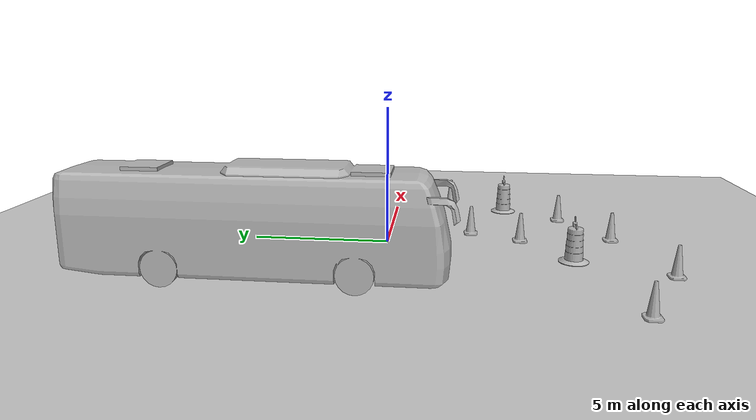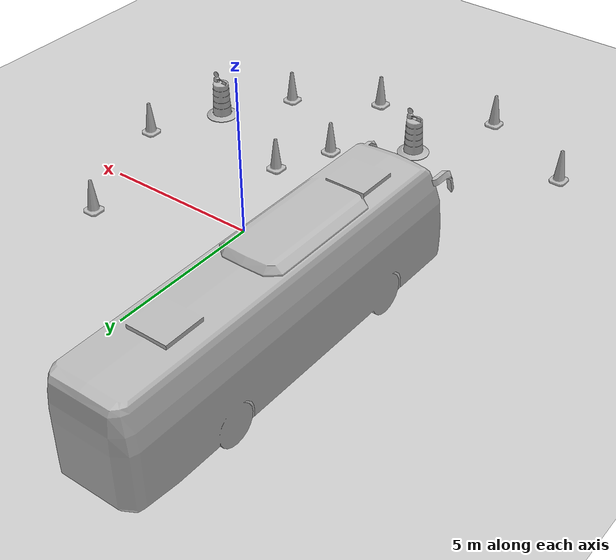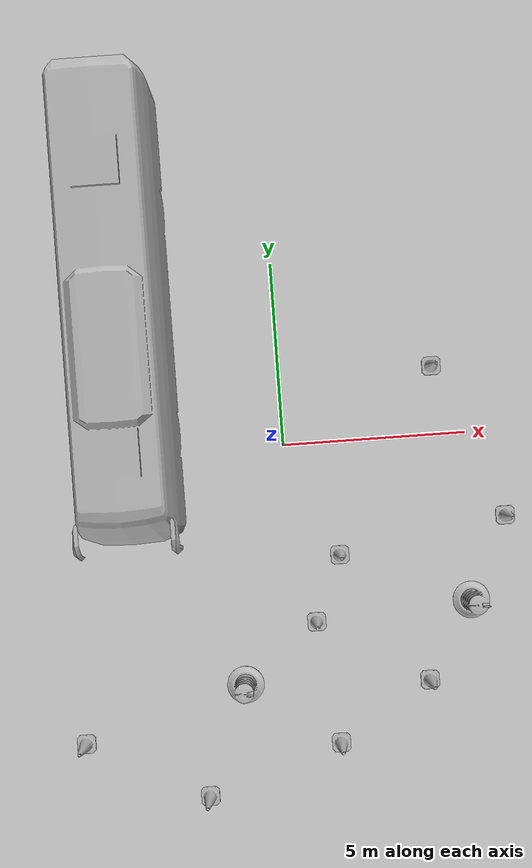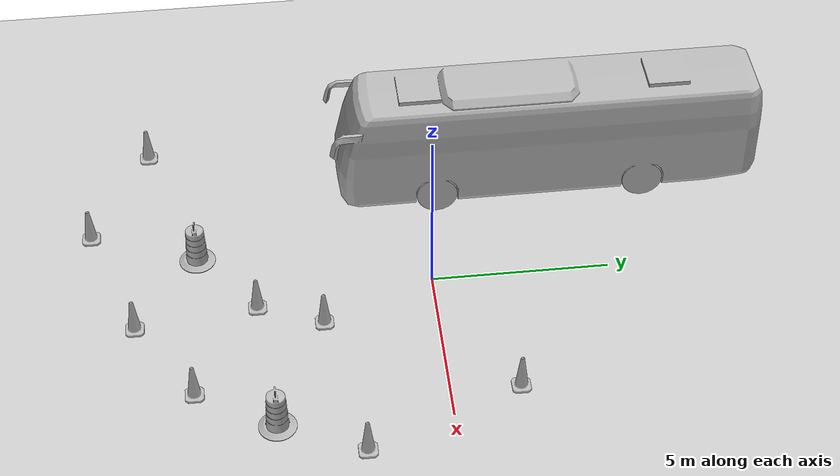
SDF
<sdf version="1.7">
 <world name="default">
  <light name="sun" type="directional">
   <pose>0 0 10 0 -0 0</pose>
   <diffuse>0.8 0.8 0.8 1</diffuse>
   <specular>0.2 0.2 0.2 1</specular>
   <attenuation>
    <range>1000</range>
    <constant>0.9</constant>
    <linear>0.01</linear>
    <quadratic>0.001</quadratic>
   </attenuation>
   <direction>-0.5 0.1 -0.9</direction>
   <spot><inner_angle>0</inner_angle><outer_angle>0</outer_angle><falloff>0</falloff></spot>
  </light>
  <model name="ground_plane">
   <static>1</static>
   <link name="link">
    <collision name="collision">
     <geometry><plane><normal>0 0 1</normal><size>100 100</size></plane></geometry>
     <surface>
      <contact><collide_bitmask>65535</collide_bitmask></contact>
      <friction><ode><mu>100</mu><mu2>50</mu2></ode></friction>
     </surface>
    </collision>
    <visual name="visual">
     <cast_shadows>0</cast_shadows>
     <geometry><plane><normal>0 0 1</normal><size>100 100</size></plane></geometry>
     <material>
      <script><uri>file://media/materials/scripts/gazebo.material</uri><name>Gazebo/Grey</name></script>
     </material>
    </visual>
   </link>
  </model>
  <gravity>0 0 -9.8</gravity>
  <magnetic_field>6e-06 2.3e-05 -4.2e-05</magnetic_field>
  <atmosphere type="adiabatic"/>
  <physics type="ode">
   <max_step_size>0.001</max_step_size>
   <real_time_factor>1</real_time_factor>
   <real_time_update_rate>1000</real_time_update_rate>
  </physics>
  <scene><ambient>0.4 0.4 0.4 1</ambient><background>0.7 0.7 0.7 1</background><shadows>1</shadows></scene>
  <audio><device>default</device></audio>
  <spherical_coordinates>
   <surface_model>EARTH_WGS84</surface_model>
   <latitude_deg>0</latitude_deg>
   <longitude_deg>0</longitude_deg>
   <elevation>0</elevation>
   <heading_deg>0</heading_deg>
  </spherical_coordinates>
  <model name="bus">
   <static>1</static>
   <link name="link">
    <collision name="collision">
     <geometry><mesh><scale>0.01 0.01 0.01</scale><uri>model://bus/meshes/bus.obj</uri></mesh></geometry>
    </collision>
    <visual name="visual">
     <geometry><mesh><scale>0.01 0.01 0.01</scale><uri>model://bus/meshes/bus.obj</uri></mesh></geometry>
    </visual>
   </link>
   <pose>-4.06905 3.73761 0 0 -0 0</pose>
  </model>
  <model name="Construction Cone">
   <link name="link">
    <collision name="collision">
     <geometry>
      <mesh><scale>10 10 10</scale><uri>model://construction_cone/meshes/construction_cone.dae</uri></mesh>
     </geometry>
    </collision>
    <visual name="visual">
     <geometry>
      <mesh><scale>10 10 10</scale><uri>model://construction_cone/meshes/construction_cone.dae</uri></mesh>
     </geometry>
    </visual>
    <inertial>
     <inertia><ixx>1</ixx><ixy>0</ixy><ixz>0</ixz><iyy>1</iyy><iyz>0</iyz><izz>1</izz></inertia>
     <mass>1</mass>
    </inertial>
   </link>
   <pose>4.20942 1.88494 -0 0 -1e-06 0</pose>
  </model>
  <model name="Construction Cone_0">
   <link name="link">
    <collision name="collision">
     <geometry>
      <mesh><scale>10 10 10</scale><uri>model://construction_cone/meshes/construction_cone.dae</uri></mesh>
     </geometry>
    </collision>
    <visual name="visual">
     <geometry>
      <mesh><scale>10 10 10</scale><uri>model://construction_cone/meshes/construction_cone.dae</uri></mesh>
     </geometry>
    </visual>
    <inertial>
     <inertia><ixx>1</ixx><ixy>0</ixy><ixz>0</ixz><iyy>1</iyy><iyz>0</iyz><izz>1</izz></inertia>
     <mass>1</mass>
    </inertial>
   </link>
   <pose>1.32992 -3.11158 -0 0 -0 0</pose>
  </model>
  <model name="Construction Cone_1">
   <link name="link">
    <collision name="collision">
     <geometry>
      <mesh><scale>10 10 10</scale><uri>model://construction_cone/meshes/construction_cone.dae</uri></mesh>
     </geometry>
    </collision>
    <visual name="visual">
     <geometry>
      <mesh><scale>10 10 10</scale><uri>model://construction_cone/meshes/construction_cone.dae</uri></mesh>
     </geometry>
    </visual>
    <inertial>
     <inertia><ixx>1</ixx><ixy>0</ixy><ixz>0</ixz><iyy>1</iyy><iyz>0</iyz><izz>1</izz></inertia>
     <mass>1</mass>
    </inertial>
   </link>
   <pose>5.94174 -2.35232 -0 0 -0 0</pose>
  </model>
  <model name="Construction Barrel">
   <link name="link">
    <inertial>
     <pose>0 0 0.4 0 -0 0</pose>
     <mass>500</mass>
     <inertia><ixx>51.2096</ixx><iyy>51.2096</iyy><izz>25</izz><ixy>0</ixy><ixz>0</ixz><iyz>0</iyz></inertia>
    </inertial>
    <collision name="collision">
     <geometry><mesh><uri>model://construction_barrel/meshes/construction_barrel.dae</uri></mesh></geometry>
    </collision>
    <visual name="visual">
     <geometry><mesh><uri>model://construction_barrel/meshes/construction_barrel.dae</uri></mesh></geometry>
    </visual>
   </link>
   <pose>4.85156 -4.60928 0 0 0 -1.6e-05</pose>
  </model>
  <model name="Construction Cone_2">
   <link name="link">
    <collision name="collision">
     <geometry>
      <mesh><scale>10 10 10</scale><uri>model://construction_cone/meshes/construction_cone.dae</uri></mesh>
     </geometry>
    </collision>
    <visual name="visual">
     <geometry>
      <mesh><scale>10 10 10</scale><uri>model://construction_cone/meshes/construction_cone.dae</uri></mesh>
     </geometry>
    </visual>
    <inertial>
     <inertia><ixx>1</ixx><ixy>0</ixy><ixz>0</ixz><iyy>1</iyy><iyz>0</iyz><izz>1</izz></inertia>
     <mass>1</mass>
    </inertial>
   </link>
   <pose>0.562271 -4.90211 -0 0 -0 0</pose>
  </model>
  <model name="Construction Barrel_0">
   <link name="link">
    <inertial>
     <pose>0 0 0.4 0 -0 0</pose>
     <mass>500</mass>
     <inertia><ixx>51.2096</ixx><iyy>51.2096</iyy><izz>25</izz><ixy>0</ixy><ixz>0</ixz><iyz>0</iyz></inertia>
    </inertial>
    <collision name="collision">
     <geometry><mesh><uri>model://construction_barrel/meshes/construction_barrel.dae</uri></mesh></geometry>
    </collision>
    <visual name="visual">
     <geometry><mesh><uri>model://construction_barrel/meshes/construction_barrel.dae</uri></mesh></geometry>
    </visual>
   </link>
   <pose>-1.51181 -6.49028 -1e-06 2e-06 -1e-06 -1e-05</pose>
  </model>
  <model name="Construction Cone_3">
   <link name="link">
    <collision name="collision">
     <geometry>
      <mesh><scale>10 10 10</scale><uri>model://construction_cone/meshes/construction_cone.dae</uri></mesh>
     </geometry>
    </collision>
    <visual name="visual">
     <geometry>
      <mesh><scale>10 10 10</scale><uri>model://construction_cone/meshes/construction_cone.dae</uri></mesh>
     </geometry>
    </visual>
    <inertial>
     <inertia><ixx>1</ixx><ixy>0</ixy><ixz>0</ixz><iyy>1</iyy><iyz>0</iyz><izz>1</izz></inertia>
     <mass>1</mass>
    </inertial>
   </link>
   <pose>3.55573 -6.71936 0 -0 -0 -0</pose>
  </model>
  <model name="Construction Cone_4">
   <link name="link">
    <collision name="collision">
     <geometry>
      <mesh><scale>10 10 10</scale><uri>model://construction_cone/meshes/construction_cone.dae</uri></mesh>
     </geometry>
    </collision>
    <visual name="visual">
     <geometry>
      <mesh><scale>10 10 10</scale><uri>model://construction_cone/meshes/construction_cone.dae</uri></mesh>
     </geometry>
    </visual>
    <inertial>
     <inertia><ixx>1</ixx><ixy>0</ixy><ixz>0</ixz><iyy>1</iyy><iyz>0</iyz><izz>1</izz></inertia>
     <mass>1</mass>
    </inertial>
   </link>
   <pose>0.997655 -8.26587 0 -0 -0 -0</pose>
  </model>
  <model name="Construction Cone_5">
   <link name="link">
    <collision name="collision">
     <geometry>
      <mesh><scale>10 10 10</scale><uri>model://construction_cone/meshes/construction_cone.dae</uri></mesh>
     </geometry>
    </collision>
    <visual name="visual">
     <geometry>
      <mesh><scale>10 10 10</scale><uri>model://construction_cone/meshes/construction_cone.dae</uri></mesh>
     </geometry>
    </visual>
    <inertial>
     <inertia><ixx>1</ixx><ixy>0</ixy><ixz>0</ixz><iyy>1</iyy><iyz>0</iyz><izz>1</izz></inertia>
     <mass>1</mass>
    </inertial>
   </link>
   <pose>-5.9964 -7.79983 -0 0 -1e-06 0</pose>
  </model>
  <model name="Construction Cone_6">
   <link name="link">
    <collision name="collision">
     <geometry>
      <mesh><scale>10 10 10</scale><uri>model://construction_cone/meshes/construction_cone.dae</uri></mesh>
     </geometry>
    </collision>
    <visual name="visual">
     <geometry>
      <mesh><scale>10 10 10</scale><uri>model://construction_cone/meshes/construction_cone.dae</uri></mesh>
     </geometry>
    </visual>
    <inertial>
     <inertia><ixx>1</ixx><ixy>0</ixy><ixz>0</ixz><iyy>1</iyy><iyz>0</iyz><izz>1</izz></inertia>
     <mass>1</mass>
    </inertial>
   </link>
   <pose>-2.70179 -9.47382 -0 0 -0 0</pose>
  </model>
 </world>
</sdf>
